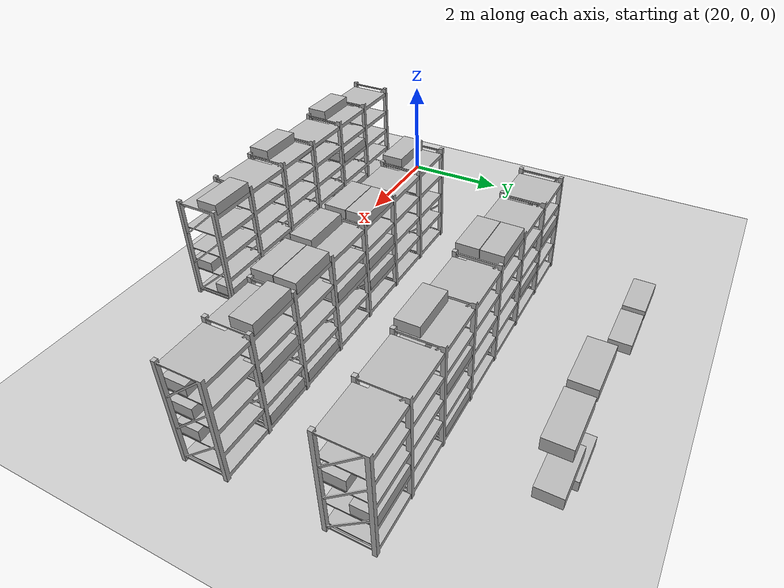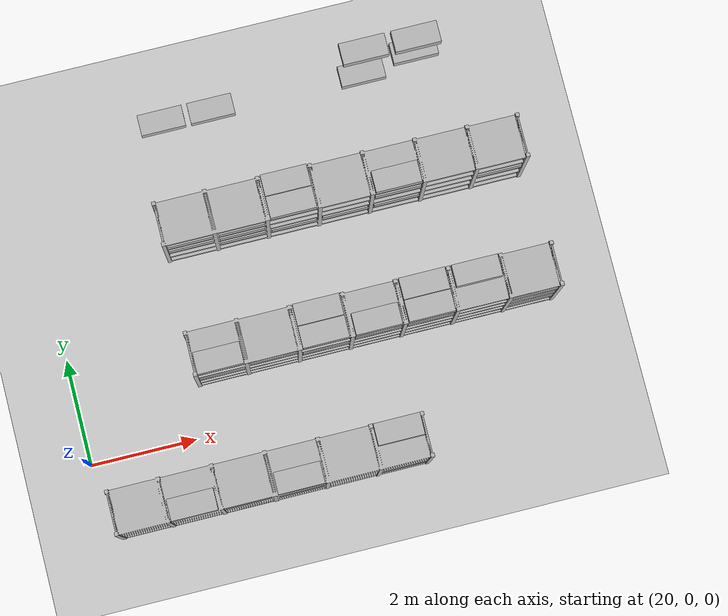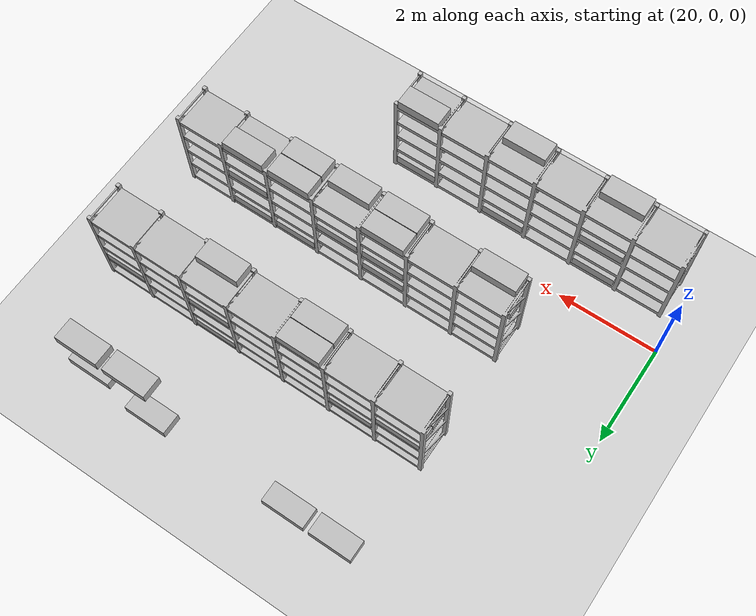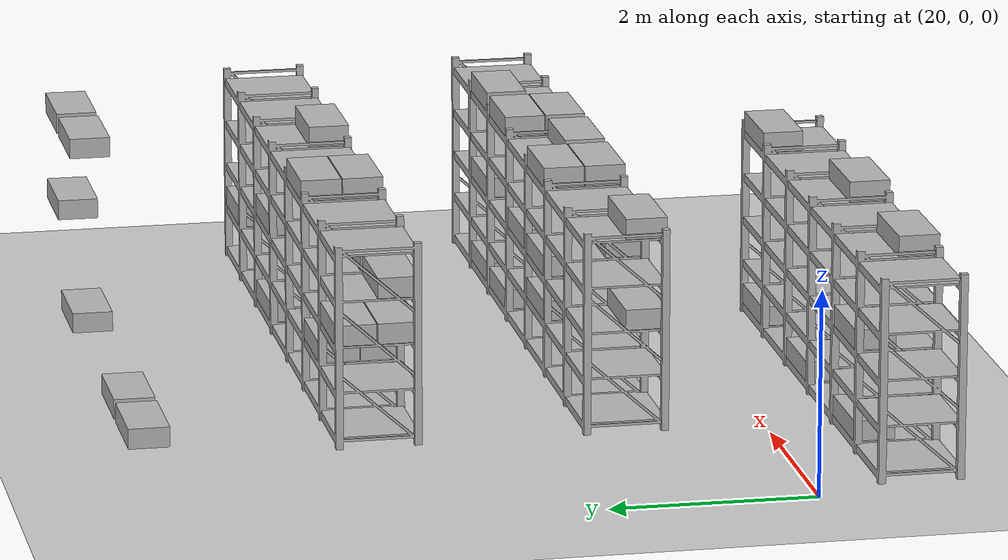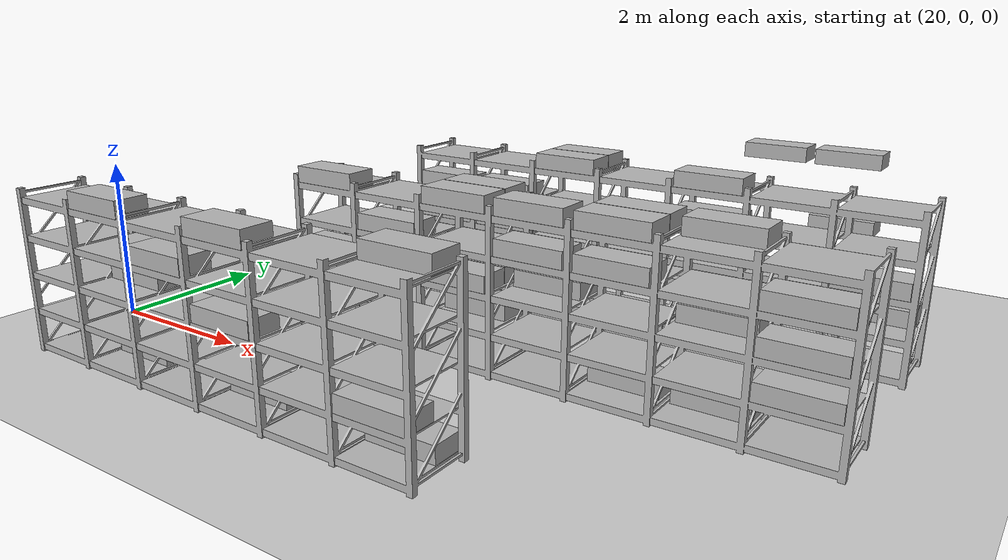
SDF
<sdf version="1.6">
 <world name="default">
  <model name="ground_plane">
   <static>1</static>
   <link name="link">
    <collision name="collision">
     <geometry><plane><normal>0 0 1</normal><size>100 100</size></plane></geometry>
     <surface><friction><ode><mu>100</mu><mu2>50</mu2></ode></friction></surface>
    </collision>
    <visual name="visual">
     <cast_shadows>0</cast_shadows>
     <geometry><plane><normal>0 0 1</normal><size>100 100</size></plane></geometry>
     <material>
      <script><uri>file://media/materials/scripts/gazebo.material</uri><name>Gazebo/Grey</name></script>
     </material>
    </visual>
   </link>
  </model>
  <include>
   <name>rack_B1_0</name>
   <uri>model://warehouse_rack_5lvl_6bay</uri>
   <pose>23.162 -1.0477 0 0 0 1.5708</pose>
  </include>
  <model name="box_B_001">
   <pose>25.562 -0.84271 0.202 0 0 1.5708</pose>
   <link name="link">
    <inertial>
     <mass>4.0</mass>
     <inertia><ixx>0.25417</ixx><iyy>0.06667</iyy><izz>0.29417</izz><ixy>0</ixy><ixz>0</ixz><iyz>0</iyz></inertia>
    </inertial>
    <collision name="collision">
     <geometry><box><size>0.4 0.85 0.2</size></box></geometry>
     <surface><friction><ode><mu>1.0</mu><mu2>1.0</mu2></ode></friction></surface>
    </collision>
    <visual name="visual">
     <cast_shadows>0</cast_shadows>
     <geometry><box><size>0.4 0.85 0.2</size></box></geometry>
     <material>
      <script>
       <uri>model://labeled_boxes/materials/scripts</uri>
       <uri>model://labeled_boxes/materials/textures</uri>
       <name>LabeledBox/B-001</name>
      </script>
     </material>
    </visual>
   </link>
  </model>
  <model name="box_B_002">
   <pose>25.562 -1.2527 0.652 0 0 1.5708</pose>
   <link name="link">
    <inertial>
     <mass>4.0</mass>
     <inertia><ixx>0.25417</ixx><iyy>0.06667</iyy><izz>0.29417</izz><ixy>0</ixy><ixz>0</ixz><iyz>0</iyz></inertia>
    </inertial>
    <collision name="collision">
     <geometry><box><size>0.4 0.85 0.2</size></box></geometry>
     <surface><friction><ode><mu>1.0</mu><mu2>1.0</mu2></ode></friction></surface>
    </collision>
    <visual name="visual">
     <cast_shadows>0</cast_shadows>
     <geometry><box><size>0.4 0.85 0.2</size></box></geometry>
     <material>
      <script>
       <uri>model://labeled_boxes/materials/scripts</uri>
       <uri>model://labeled_boxes/materials/textures</uri>
       <name>LabeledBox/B-002</name>
      </script>
     </material>
    </visual>
   </link>
  </model>
  <model name="box_B_003">
   <pose>25.562 -0.84271 2.002 0 0 1.5708</pose>
   <link name="link">
    <inertial>
     <mass>4.0</mass>
     <inertia><ixx>0.25417</ixx><iyy>0.06667</iyy><izz>0.29417</izz><ixy>0</ixy><ixz>0</ixz><iyz>0</iyz></inertia>
    </inertial>
    <collision name="collision">
     <geometry><box><size>0.4 0.85 0.2</size></box></geometry>
     <surface><friction><ode><mu>1.0</mu><mu2>1.0</mu2></ode></friction></surface>
    </collision>
    <visual name="visual">
     <cast_shadows>0</cast_shadows>
     <geometry><box><size>0.4 0.85 0.2</size></box></geometry>
     <material>
      <script>
       <uri>model://labeled_boxes/materials/scripts</uri>
       <uri>model://labeled_boxes/materials/textures</uri>
       <name>LabeledBox/B-003</name>
      </script>
     </material>
    </visual>
   </link>
  </model>
  <model name="box_B_004">
   <pose>23.646 -0.84271 0.202 0 0 1.5708</pose>
   <link name="link">
    <inertial>
     <mass>4.0</mass>
     <inertia><ixx>0.25417</ixx><iyy>0.06667</iyy><izz>0.29417</izz><ixy>0</ixy><ixz>0</ixz><iyz>0</iyz></inertia>
    </inertial>
    <collision name="collision">
     <geometry><box><size>0.4 0.85 0.2</size></box></geometry>
     <surface><friction><ode><mu>1.0</mu><mu2>1.0</mu2></ode></friction></surface>
    </collision>
    <visual name="visual">
     <cast_shadows>0</cast_shadows>
     <geometry><box><size>0.4 0.85 0.2</size></box></geometry>
     <material>
      <script>
       <uri>model://labeled_boxes/materials/scripts</uri>
       <uri>model://labeled_boxes/materials/textures</uri>
       <name>LabeledBox/B-004</name>
      </script>
     </material>
    </visual>
   </link>
  </model>
  <model name="box_B_005">
   <pose>23.646 -1.2527 1.102 0 0 1.5708</pose>
   <link name="link">
    <inertial>
     <mass>4.0</mass>
     <inertia><ixx>0.25417</ixx><iyy>0.06667</iyy><izz>0.29417</izz><ixy>0</ixy><ixz>0</ixz><iyz>0</iyz></inertia>
    </inertial>
    <collision name="collision">
     <geometry><box><size>0.4 0.85 0.2</size></box></geometry>
     <surface><friction><ode><mu>1.0</mu><mu2>1.0</mu2></ode></friction></surface>
    </collision>
    <visual name="visual">
     <cast_shadows>0</cast_shadows>
     <geometry><box><size>0.4 0.85 0.2</size></box></geometry>
     <material>
      <script>
       <uri>model://labeled_boxes/materials/scripts</uri>
       <uri>model://labeled_boxes/materials/textures</uri>
       <name>LabeledBox/B-005</name>
      </script>
     </material>
    </visual>
   </link>
  </model>
  <model name="box_B_006">
   <pose>23.646 -1.2527 2.002 0 0 1.5708</pose>
   <link name="link">
    <inertial>
     <mass>4.0</mass>
     <inertia><ixx>0.25417</ixx><iyy>0.06667</iyy><izz>0.29417</izz><ixy>0</ixy><ixz>0</ixz><iyz>0</iyz></inertia>
    </inertial>
    <collision name="collision">
     <geometry><box><size>0.4 0.85 0.2</size></box></geometry>
     <surface><friction><ode><mu>1.0</mu><mu2>1.0</mu2></ode></friction></surface>
    </collision>
    <visual name="visual">
     <cast_shadows>0</cast_shadows>
     <geometry><box><size>0.4 0.85 0.2</size></box></geometry>
     <material>
      <script>
       <uri>model://labeled_boxes/materials/scripts</uri>
       <uri>model://labeled_boxes/materials/textures</uri>
       <name>LabeledBox/B-006</name>
      </script>
     </material>
    </visual>
   </link>
  </model>
  <model name="box_B_007">
   <pose>22.679 -1.2527 1.552 0 0 1.5708</pose>
   <link name="link">
    <inertial>
     <mass>4.0</mass>
     <inertia><ixx>0.25417</ixx><iyy>0.06667</iyy><izz>0.29417</izz><ixy>0</ixy><ixz>0</ixz><iyz>0</iyz></inertia>
    </inertial>
    <collision name="collision">
     <geometry><box><size>0.4 0.85 0.2</size></box></geometry>
     <surface><friction><ode><mu>1.0</mu><mu2>1.0</mu2></ode></friction></surface>
    </collision>
    <visual name="visual">
     <cast_shadows>0</cast_shadows>
     <geometry><box><size>0.4 0.85 0.2</size></box></geometry>
     <material>
      <script>
       <uri>model://labeled_boxes/materials/scripts</uri>
       <uri>model://labeled_boxes/materials/textures</uri>
       <name>LabeledBox/B-007</name>
      </script>
     </material>
    </visual>
   </link>
  </model>
  <model name="box_B_008">
   <pose>21.712 -0.84271 0.202 0 0 1.5708</pose>
   <link name="link">
    <inertial>
     <mass>4.0</mass>
     <inertia><ixx>0.25417</ixx><iyy>0.06667</iyy><izz>0.29417</izz><ixy>0</ixy><ixz>0</ixz><iyz>0</iyz></inertia>
    </inertial>
    <collision name="collision">
     <geometry><box><size>0.4 0.85 0.2</size></box></geometry>
     <surface><friction><ode><mu>1.0</mu><mu2>1.0</mu2></ode></friction></surface>
    </collision>
    <visual name="visual">
     <cast_shadows>0</cast_shadows>
     <geometry><box><size>0.4 0.85 0.2</size></box></geometry>
     <material>
      <script>
       <uri>model://labeled_boxes/materials/scripts</uri>
       <uri>model://labeled_boxes/materials/textures</uri>
       <name>LabeledBox/B-008</name>
      </script>
     </material>
    </visual>
   </link>
  </model>
  <model name="box_B_010">
   <pose>21.712 -0.84271 1.102 0 0 1.5708</pose>
   <link name="link">
    <inertial>
     <mass>4.0</mass>
     <inertia><ixx>0.25417</ixx><iyy>0.06667</iyy><izz>0.29417</izz><ixy>0</ixy><ixz>0</ixz><iyz>0</iyz></inertia>
    </inertial>
    <collision name="collision">
     <geometry><box><size>0.4 0.85 0.2</size></box></geometry>
     <surface><friction><ode><mu>1.0</mu><mu2>1.0</mu2></ode></friction></surface>
    </collision>
    <visual name="visual">
     <cast_shadows>0</cast_shadows>
     <geometry><box><size>0.4 0.85 0.2</size></box></geometry>
     <material>
      <script>
       <uri>model://labeled_boxes/materials/scripts</uri>
       <uri>model://labeled_boxes/materials/textures</uri>
       <name>LabeledBox/B-010</name>
      </script>
     </material>
    </visual>
   </link>
  </model>
  <model name="box_B_012">
   <pose>21.712 -1.2527 2.002 0 0 1.5708</pose>
   <link name="link">
    <inertial>
     <mass>4.0</mass>
     <inertia><ixx>0.25417</ixx><iyy>0.06667</iyy><izz>0.29417</izz><ixy>0</ixy><ixz>0</ixz><iyz>0</iyz></inertia>
    </inertial>
    <collision name="collision">
     <geometry><box><size>0.4 0.85 0.2</size></box></geometry>
     <surface><friction><ode><mu>1.0</mu><mu2>1.0</mu2></ode></friction></surface>
    </collision>
    <visual name="visual">
     <cast_shadows>0</cast_shadows>
     <geometry><box><size>0.4 0.85 0.2</size></box></geometry>
     <material>
      <script>
       <uri>model://labeled_boxes/materials/scripts</uri>
       <uri>model://labeled_boxes/materials/textures</uri>
       <name>LabeledBox/B-012</name>
      </script>
     </material>
    </visual>
   </link>
  </model>
  <include>
   <name>rack_B2_0</name>
   <uri>model://warehouse_rack_5lvl_7bay</uri>
   <pose>25.662 1.3523 0 0 0 1.5708</pose>
  </include>
  <model name="box_B_015">
   <pose>28.559 1.1473 0.652 0 0 1.5708</pose>
   <link name="link">
    <inertial>
     <mass>4.0</mass>
     <inertia><ixx>0.25417</ixx><iyy>0.06667</iyy><izz>0.29417</izz><ixy>0</ixy><ixz>0</ixz><iyz>0</iyz></inertia>
    </inertial>
    <collision name="collision">
     <geometry><box><size>0.4 0.85 0.2</size></box></geometry>
     <surface><friction><ode><mu>1.0</mu><mu2>1.0</mu2></ode></friction></surface>
    </collision>
    <visual name="visual">
     <cast_shadows>0</cast_shadows>
     <geometry><box><size>0.4 0.85 0.2</size></box></geometry>
     <material>
      <script>
       <uri>model://labeled_boxes/materials/scripts</uri>
       <uri>model://labeled_boxes/materials/textures</uri>
       <name>LabeledBox/B-015</name>
      </script>
     </material>
    </visual>
   </link>
  </model>
  <model name="box_B_016">
   <pose>28.559 1.1473 1.102 0 0 1.5708</pose>
   <link name="link">
    <inertial>
     <mass>4.0</mass>
     <inertia><ixx>0.25417</ixx><iyy>0.06667</iyy><izz>0.29417</izz><ixy>0</ixy><ixz>0</ixz><iyz>0</iyz></inertia>
    </inertial>
    <collision name="collision">
     <geometry><box><size>0.4 0.85 0.2</size></box></geometry>
     <surface><friction><ode><mu>1.0</mu><mu2>1.0</mu2></ode></friction></surface>
    </collision>
    <visual name="visual">
     <cast_shadows>0</cast_shadows>
     <geometry><box><size>0.4 0.85 0.2</size></box></geometry>
     <material>
      <script>
       <uri>model://labeled_boxes/materials/scripts</uri>
       <uri>model://labeled_boxes/materials/textures</uri>
       <name>LabeledBox/B-016</name>
      </script>
     </material>
    </visual>
   </link>
  </model>
  <model name="box_B_017">
   <pose>28.559 1.1473 1.552 0 0 1.5708</pose>
   <link name="link">
    <inertial>
     <mass>4.0</mass>
     <inertia><ixx>0.25417</ixx><iyy>0.06667</iyy><izz>0.29417</izz><ixy>0</ixy><ixz>0</ixz><iyz>0</iyz></inertia>
    </inertial>
    <collision name="collision">
     <geometry><box><size>0.4 0.85 0.2</size></box></geometry>
     <surface><friction><ode><mu>1.0</mu><mu2>1.0</mu2></ode></friction></surface>
    </collision>
    <visual name="visual">
     <cast_shadows>0</cast_shadows>
     <geometry><box><size>0.4 0.85 0.2</size></box></geometry>
     <material>
      <script>
       <uri>model://labeled_boxes/materials/scripts</uri>
       <uri>model://labeled_boxes/materials/textures</uri>
       <name>LabeledBox/B-017</name>
      </script>
     </material>
    </visual>
   </link>
  </model>
  <model name="box_B_018">
   <pose>27.605 1.5573 0.202 0 0 1.5708</pose>
   <link name="link">
    <inertial>
     <mass>4.0</mass>
     <inertia><ixx>0.25417</ixx><iyy>0.06667</iyy><izz>0.29417</izz><ixy>0</ixy><ixz>0</ixz><iyz>0</iyz></inertia>
    </inertial>
    <collision name="collision">
     <geometry><box><size>0.4 0.85 0.2</size></box></geometry>
     <surface><friction><ode><mu>1.0</mu><mu2>1.0</mu2></ode></friction></surface>
    </collision>
    <visual name="visual">
     <cast_shadows>0</cast_shadows>
     <geometry><box><size>0.4 0.85 0.2</size></box></geometry>
     <material>
      <script>
       <uri>model://labeled_boxes/materials/scripts</uri>
       <uri>model://labeled_boxes/materials/textures</uri>
       <name>LabeledBox/B-018</name>
      </script>
     </material>
    </visual>
   </link>
  </model>
  <model name="box_B_019">
   <pose>27.605 1.5573 1.102 0 0 1.5708</pose>
   <link name="link">
    <inertial>
     <mass>4.0</mass>
     <inertia><ixx>0.25417</ixx><iyy>0.06667</iyy><izz>0.29417</izz><ixy>0</ixy><ixz>0</ixz><iyz>0</iyz></inertia>
    </inertial>
    <collision name="collision">
     <geometry><box><size>0.4 0.85 0.2</size></box></geometry>
     <surface><friction><ode><mu>1.0</mu><mu2>1.0</mu2></ode></friction></surface>
    </collision>
    <visual name="visual">
     <cast_shadows>0</cast_shadows>
     <geometry><box><size>0.4 0.85 0.2</size></box></geometry>
     <material>
      <script>
       <uri>model://labeled_boxes/materials/scripts</uri>
       <uri>model://labeled_boxes/materials/textures</uri>
       <name>LabeledBox/B-019</name>
      </script>
     </material>
    </visual>
   </link>
  </model>
  <model name="box_B_020">
   <pose>27.605 1.5573 2.002 0 0 1.5708</pose>
   <link name="link">
    <inertial>
     <mass>4.0</mass>
     <inertia><ixx>0.25417</ixx><iyy>0.06667</iyy><izz>0.29417</izz><ixy>0</ixy><ixz>0</ixz><iyz>0</iyz></inertia>
    </inertial>
    <collision name="collision">
     <geometry><box><size>0.4 0.85 0.2</size></box></geometry>
     <surface><friction><ode><mu>1.0</mu><mu2>1.0</mu2></ode></friction></surface>
    </collision>
    <visual name="visual">
     <cast_shadows>0</cast_shadows>
     <geometry><box><size>0.4 0.85 0.2</size></box></geometry>
     <material>
      <script>
       <uri>model://labeled_boxes/materials/scripts</uri>
       <uri>model://labeled_boxes/materials/textures</uri>
       <name>LabeledBox/B-020</name>
      </script>
     </material>
    </visual>
   </link>
  </model>
  <model name="box_B_021">
   <pose>26.634 1.5573 0.202 0 0 1.5708</pose>
   <link name="link">
    <inertial>
     <mass>4.0</mass>
     <inertia><ixx>0.25417</ixx><iyy>0.06667</iyy><izz>0.29417</izz><ixy>0</ixy><ixz>0</ixz><iyz>0</iyz></inertia>
    </inertial>
    <collision name="collision">
     <geometry><box><size>0.4 0.85 0.2</size></box></geometry>
     <surface><friction><ode><mu>1.0</mu><mu2>1.0</mu2></ode></friction></surface>
    </collision>
    <visual name="visual">
     <cast_shadows>0</cast_shadows>
     <geometry><box><size>0.4 0.85 0.2</size></box></geometry>
     <material>
      <script>
       <uri>model://labeled_boxes/materials/scripts</uri>
       <uri>model://labeled_boxes/materials/textures</uri>
       <name>LabeledBox/B-021</name>
      </script>
     </material>
    </visual>
   </link>
  </model>
  <model name="box_B_022">
   <pose>26.634 1.1473 1.552 0 0 1.5708</pose>
   <link name="link">
    <inertial>
     <mass>4.0</mass>
     <inertia><ixx>0.25417</ixx><iyy>0.06667</iyy><izz>0.29417</izz><ixy>0</ixy><ixz>0</ixz><iyz>0</iyz></inertia>
    </inertial>
    <collision name="collision">
     <geometry><box><size>0.4 0.85 0.2</size></box></geometry>
     <surface><friction><ode><mu>1.0</mu><mu2>1.0</mu2></ode></friction></surface>
    </collision>
    <visual name="visual">
     <cast_shadows>0</cast_shadows>
     <geometry><box><size>0.4 0.85 0.2</size></box></geometry>
     <material>
      <script>
       <uri>model://labeled_boxes/materials/scripts</uri>
       <uri>model://labeled_boxes/materials/textures</uri>
       <name>LabeledBox/B-022</name>
      </script>
     </material>
    </visual>
   </link>
  </model>
  <model name="box_B_023">
   <pose>26.634 1.1473 2.002 0 0 1.5708</pose>
   <link name="link">
    <inertial>
     <mass>4.0</mass>
     <inertia><ixx>0.25417</ixx><iyy>0.06667</iyy><izz>0.29417</izz><ixy>0</ixy><ixz>0</ixz><iyz>0</iyz></inertia>
    </inertial>
    <collision name="collision">
     <geometry><box><size>0.4 0.85 0.2</size></box></geometry>
     <surface><friction><ode><mu>1.0</mu><mu2>1.0</mu2></ode></friction></surface>
    </collision>
    <visual name="visual">
     <cast_shadows>0</cast_shadows>
     <geometry><box><size>0.4 0.85 0.2</size></box></geometry>
     <material>
      <script>
       <uri>model://labeled_boxes/materials/scripts</uri>
       <uri>model://labeled_boxes/materials/textures</uri>
       <name>LabeledBox/B-023</name>
      </script>
     </material>
    </visual>
   </link>
  </model>
  <model name="box_B_024">
   <pose>26.634 1.5573 2.002 0 0 1.5708</pose>
   <link name="link">
    <inertial>
     <mass>4.0</mass>
     <inertia><ixx>0.25417</ixx><iyy>0.06667</iyy><izz>0.29417</izz><ixy>0</ixy><ixz>0</ixz><iyz>0</iyz></inertia>
    </inertial>
    <collision name="collision">
     <geometry><box><size>0.4 0.85 0.2</size></box></geometry>
     <surface><friction><ode><mu>1.0</mu><mu2>1.0</mu2></ode></friction></surface>
    </collision>
    <visual name="visual">
     <cast_shadows>0</cast_shadows>
     <geometry><box><size>0.4 0.85 0.2</size></box></geometry>
     <material>
      <script>
       <uri>model://labeled_boxes/materials/scripts</uri>
       <uri>model://labeled_boxes/materials/textures</uri>
       <name>LabeledBox/B-024</name>
      </script>
     </material>
    </visual>
   </link>
  </model>
  <model name="box_B_025">
   <pose>25.662 1.5573 1.102 0 0 1.5708</pose>
   <link name="link">
    <inertial>
     <mass>4.0</mass>
     <inertia><ixx>0.25417</ixx><iyy>0.06667</iyy><izz>0.29417</izz><ixy>0</ixy><ixz>0</ixz><iyz>0</iyz></inertia>
    </inertial>
    <collision name="collision">
     <geometry><box><size>0.4 0.85 0.2</size></box></geometry>
     <surface><friction><ode><mu>1.0</mu><mu2>1.0</mu2></ode></friction></surface>
    </collision>
    <visual name="visual">
     <cast_shadows>0</cast_shadows>
     <geometry><box><size>0.4 0.85 0.2</size></box></geometry>
     <material>
      <script>
       <uri>model://labeled_boxes/materials/scripts</uri>
       <uri>model://labeled_boxes/materials/textures</uri>
       <name>LabeledBox/B-025</name>
      </script>
     </material>
    </visual>
   </link>
  </model>
  <model name="box_B_026">
   <pose>25.662 1.1473 1.552 0 0 1.5708</pose>
   <link name="link">
    <inertial>
     <mass>4.0</mass>
     <inertia><ixx>0.25417</ixx><iyy>0.06667</iyy><izz>0.29417</izz><ixy>0</ixy><ixz>0</ixz><iyz>0</iyz></inertia>
    </inertial>
    <collision name="collision">
     <geometry><box><size>0.4 0.85 0.2</size></box></geometry>
     <surface><friction><ode><mu>1.0</mu><mu2>1.0</mu2></ode></friction></surface>
    </collision>
    <visual name="visual">
     <cast_shadows>0</cast_shadows>
     <geometry><box><size>0.4 0.85 0.2</size></box></geometry>
     <material>
      <script>
       <uri>model://labeled_boxes/materials/scripts</uri>
       <uri>model://labeled_boxes/materials/textures</uri>
       <name>LabeledBox/B-026</name>
      </script>
     </material>
    </visual>
   </link>
  </model>
  <model name="box_B_027">
   <pose>25.662 1.1473 2.002 0 0 1.5708</pose>
   <link name="link">
    <inertial>
     <mass>4.0</mass>
     <inertia><ixx>0.25417</ixx><iyy>0.06667</iyy><izz>0.29417</izz><ixy>0</ixy><ixz>0</ixz><iyz>0</iyz></inertia>
    </inertial>
    <collision name="collision">
     <geometry><box><size>0.4 0.85 0.2</size></box></geometry>
     <surface><friction><ode><mu>1.0</mu><mu2>1.0</mu2></ode></friction></surface>
    </collision>
    <visual name="visual">
     <cast_shadows>0</cast_shadows>
     <geometry><box><size>0.4 0.85 0.2</size></box></geometry>
     <material>
      <script>
       <uri>model://labeled_boxes/materials/scripts</uri>
       <uri>model://labeled_boxes/materials/textures</uri>
       <name>LabeledBox/B-027</name>
      </script>
     </material>
    </visual>
   </link>
  </model>
  <model name="box_B_028">
   <pose>24.691 1.5573 0.652 0 0 1.5708</pose>
   <link name="link">
    <inertial>
     <mass>4.0</mass>
     <inertia><ixx>0.25417</ixx><iyy>0.06667</iyy><izz>0.29417</izz><ixy>0</ixy><ixz>0</ixz><iyz>0</iyz></inertia>
    </inertial>
    <collision name="collision">
     <geometry><box><size>0.4 0.85 0.2</size></box></geometry>
     <surface><friction><ode><mu>1.0</mu><mu2>1.0</mu2></ode></friction></surface>
    </collision>
    <visual name="visual">
     <cast_shadows>0</cast_shadows>
     <geometry><box><size>0.4 0.85 0.2</size></box></geometry>
     <material>
      <script>
       <uri>model://labeled_boxes/materials/scripts</uri>
       <uri>model://labeled_boxes/materials/textures</uri>
       <name>LabeledBox/B-028</name>
      </script>
     </material>
    </visual>
   </link>
  </model>
  <model name="box_B_029">
   <pose>24.691 1.1473 1.102 0 0 1.5708</pose>
   <link name="link">
    <inertial>
     <mass>4.0</mass>
     <inertia><ixx>0.25417</ixx><iyy>0.06667</iyy><izz>0.29417</izz><ixy>0</ixy><ixz>0</ixz><iyz>0</iyz></inertia>
    </inertial>
    <collision name="collision">
     <geometry><box><size>0.4 0.85 0.2</size></box></geometry>
     <surface><friction><ode><mu>1.0</mu><mu2>1.0</mu2></ode></friction></surface>
    </collision>
    <visual name="visual">
     <cast_shadows>0</cast_shadows>
     <geometry><box><size>0.4 0.85 0.2</size></box></geometry>
     <material>
      <script>
       <uri>model://labeled_boxes/materials/scripts</uri>
       <uri>model://labeled_boxes/materials/textures</uri>
       <name>LabeledBox/B-029</name>
      </script>
     </material>
    </visual>
   </link>
  </model>
  <model name="box_B_030">
   <pose>24.691 1.5573 1.102 0 0 1.5708</pose>
   <link name="link">
    <inertial>
     <mass>4.0</mass>
     <inertia><ixx>0.25417</ixx><iyy>0.06667</iyy><izz>0.29417</izz><ixy>0</ixy><ixz>0</ixz><iyz>0</iyz></inertia>
    </inertial>
    <collision name="collision">
     <geometry><box><size>0.4 0.85 0.2</size></box></geometry>
     <surface><friction><ode><mu>1.0</mu><mu2>1.0</mu2></ode></friction></surface>
    </collision>
    <visual name="visual">
     <cast_shadows>0</cast_shadows>
     <geometry><box><size>0.4 0.85 0.2</size></box></geometry>
     <material>
      <script>
       <uri>model://labeled_boxes/materials/scripts</uri>
       <uri>model://labeled_boxes/materials/textures</uri>
       <name>LabeledBox/B-030</name>
      </script>
     </material>
    </visual>
   </link>
  </model>
  <model name="box_B_031">
   <pose>24.691 1.1473 2.002 0 0 1.5708</pose>
   <link name="link">
    <inertial>
     <mass>4.0</mass>
     <inertia><ixx>0.25417</ixx><iyy>0.06667</iyy><izz>0.29417</izz><ixy>0</ixy><ixz>0</ixz><iyz>0</iyz></inertia>
    </inertial>
    <collision name="collision">
     <geometry><box><size>0.4 0.85 0.2</size></box></geometry>
     <surface><friction><ode><mu>1.0</mu><mu2>1.0</mu2></ode></friction></surface>
    </collision>
    <visual name="visual">
     <cast_shadows>0</cast_shadows>
     <geometry><box><size>0.4 0.85 0.2</size></box></geometry>
     <material>
      <script>
       <uri>model://labeled_boxes/materials/scripts</uri>
       <uri>model://labeled_boxes/materials/textures</uri>
       <name>LabeledBox/B-031</name>
      </script>
     </material>
    </visual>
   </link>
  </model>
  <model name="box_B_032">
   <pose>24.691 1.5573 2.002 0 0 1.5708</pose>
   <link name="link">
    <inertial>
     <mass>4.0</mass>
     <inertia><ixx>0.25417</ixx><iyy>0.06667</iyy><izz>0.29417</izz><ixy>0</ixy><ixz>0</ixz><iyz>0</iyz></inertia>
    </inertial>
    <collision name="collision">
     <geometry><box><size>0.4 0.85 0.2</size></box></geometry>
     <surface><friction><ode><mu>1.0</mu><mu2>1.0</mu2></ode></friction></surface>
    </collision>
    <visual name="visual">
     <cast_shadows>0</cast_shadows>
     <geometry><box><size>0.4 0.85 0.2</size></box></geometry>
     <material>
      <script>
       <uri>model://labeled_boxes/materials/scripts</uri>
       <uri>model://labeled_boxes/materials/textures</uri>
       <name>LabeledBox/B-032</name>
      </script>
     </material>
    </visual>
   </link>
  </model>
  <model name="box_B_033">
   <pose>23.72 1.1473 1.552 0 0 1.5708</pose>
   <link name="link">
    <inertial>
     <mass>4.0</mass>
     <inertia><ixx>0.25417</ixx><iyy>0.06667</iyy><izz>0.29417</izz><ixy>0</ixy><ixz>0</ixz><iyz>0</iyz></inertia>
    </inertial>
    <collision name="collision">
     <geometry><box><size>0.4 0.85 0.2</size></box></geometry>
     <surface><friction><ode><mu>1.0</mu><mu2>1.0</mu2></ode></friction></surface>
    </collision>
    <visual name="visual">
     <cast_shadows>0</cast_shadows>
     <geometry><box><size>0.4 0.85 0.2</size></box></geometry>
     <material>
      <script>
       <uri>model://labeled_boxes/materials/scripts</uri>
       <uri>model://labeled_boxes/materials/textures</uri>
       <name>LabeledBox/B-033</name>
      </script>
     </material>
    </visual>
   </link>
  </model>
  <model name="box_B_034">
   <pose>22.766 1.1473 1.102 0 0 1.5708</pose>
   <link name="link">
    <inertial>
     <mass>4.0</mass>
     <inertia><ixx>0.25417</ixx><iyy>0.06667</iyy><izz>0.29417</izz><ixy>0</ixy><ixz>0</ixz><iyz>0</iyz></inertia>
    </inertial>
    <collision name="collision">
     <geometry><box><size>0.4 0.85 0.2</size></box></geometry>
     <surface><friction><ode><mu>1.0</mu><mu2>1.0</mu2></ode></friction></surface>
    </collision>
    <visual name="visual">
     <cast_shadows>0</cast_shadows>
     <geometry><box><size>0.4 0.85 0.2</size></box></geometry>
     <material>
      <script>
       <uri>model://labeled_boxes/materials/scripts</uri>
       <uri>model://labeled_boxes/materials/textures</uri>
       <name>LabeledBox/B-034</name>
      </script>
     </material>
    </visual>
   </link>
  </model>
  <model name="box_B_035">
   <pose>22.766 1.1473 2.002 0 0 1.5708</pose>
   <link name="link">
    <inertial>
     <mass>4.0</mass>
     <inertia><ixx>0.25417</ixx><iyy>0.06667</iyy><izz>0.29417</izz><ixy>0</ixy><ixz>0</ixz><iyz>0</iyz></inertia>
    </inertial>
    <collision name="collision">
     <geometry><box><size>0.4 0.85 0.2</size></box></geometry>
     <surface><friction><ode><mu>1.0</mu><mu2>1.0</mu2></ode></friction></surface>
    </collision>
    <visual name="visual">
     <cast_shadows>0</cast_shadows>
     <geometry><box><size>0.4 0.85 0.2</size></box></geometry>
     <material>
      <script>
       <uri>model://labeled_boxes/materials/scripts</uri>
       <uri>model://labeled_boxes/materials/textures</uri>
       <name>LabeledBox/B-035</name>
      </script>
     </material>
    </visual>
   </link>
  </model>
  <include>
   <name>rack_B3_0</name>
   <uri>model://warehouse_rack_5lvl_7bay</uri>
   <pose>25.662 3.7523 0 0 0 1.5708</pose>
  </include>
  <model name="box_B_050">
   <pose>28.559 3.9573 0.652 0 0 1.5708</pose>
   <link name="link">
    <inertial>
     <mass>4.0</mass>
     <inertia><ixx>0.25417</ixx><iyy>0.06667</iyy><izz>0.29417</izz><ixy>0</ixy><ixz>0</ixz><iyz>0</iyz></inertia>
    </inertial>
    <collision name="collision">
     <geometry><box><size>0.4 0.85 0.2</size></box></geometry>
     <surface><friction><ode><mu>1.0</mu><mu2>1.0</mu2></ode></friction></surface>
    </collision>
    <visual name="visual">
     <cast_shadows>0</cast_shadows>
     <geometry><box><size>0.4 0.85 0.2</size></box></geometry>
     <material>
      <script>
       <uri>model://labeled_boxes/materials/scripts</uri>
       <uri>model://labeled_boxes/materials/textures</uri>
       <name>LabeledBox/B-050</name>
      </script>
     </material>
    </visual>
   </link>
  </model>
  <model name="box_B_051">
   <pose>28.559 3.5473 1.102 0 0 1.5708</pose>
   <link name="link">
    <inertial>
     <mass>4.0</mass>
     <inertia><ixx>0.25417</ixx><iyy>0.06667</iyy><izz>0.29417</izz><ixy>0</ixy><ixz>0</ixz><iyz>0</iyz></inertia>
    </inertial>
    <collision name="collision">
     <geometry><box><size>0.4 0.85 0.2</size></box></geometry>
     <surface><friction><ode><mu>1.0</mu><mu2>1.0</mu2></ode></friction></surface>
    </collision>
    <visual name="visual">
     <cast_shadows>0</cast_shadows>
     <geometry><box><size>0.4 0.85 0.2</size></box></geometry>
     <material>
      <script>
       <uri>model://labeled_boxes/materials/scripts</uri>
       <uri>model://labeled_boxes/materials/textures</uri>
       <name>LabeledBox/B-051</name>
      </script>
     </material>
    </visual>
   </link>
  </model>
  <model name="box_B_052">
   <pose>26.634 3.9573 0.202 0 0 1.5708</pose>
   <link name="link">
    <inertial>
     <mass>4.0</mass>
     <inertia><ixx>0.25417</ixx><iyy>0.06667</iyy><izz>0.29417</izz><ixy>0</ixy><ixz>0</ixz><iyz>0</iyz></inertia>
    </inertial>
    <collision name="collision">
     <geometry><box><size>0.4 0.85 0.2</size></box></geometry>
     <surface><friction><ode><mu>1.0</mu><mu2>1.0</mu2></ode></friction></surface>
    </collision>
    <visual name="visual">
     <cast_shadows>0</cast_shadows>
     <geometry><box><size>0.4 0.85 0.2</size></box></geometry>
     <material>
      <script>
       <uri>model://labeled_boxes/materials/scripts</uri>
       <uri>model://labeled_boxes/materials/textures</uri>
       <name>LabeledBox/B-052</name>
      </script>
     </material>
    </visual>
   </link>
  </model>
  <model name="box_B_053">
   <pose>26.634 3.5473 0.652 0 0 1.5708</pose>
   <link name="link">
    <inertial>
     <mass>4.0</mass>
     <inertia><ixx>0.25417</ixx><iyy>0.06667</iyy><izz>0.29417</izz><ixy>0</ixy><ixz>0</ixz><iyz>0</iyz></inertia>
    </inertial>
    <collision name="collision">
     <geometry><box><size>0.4 0.85 0.2</size></box></geometry>
     <surface><friction><ode><mu>1.0</mu><mu2>1.0</mu2></ode></friction></surface>
    </collision>
    <visual name="visual">
     <cast_shadows>0</cast_shadows>
     <geometry><box><size>0.4 0.85 0.2</size></box></geometry>
     <material>
      <script>
       <uri>model://labeled_boxes/materials/scripts</uri>
       <uri>model://labeled_boxes/materials/textures</uri>
       <name>LabeledBox/B-053</name>
      </script>
     </material>
    </visual>
   </link>
  </model>
  <model name="box_B_054">
   <pose>26.634 3.9573 1.102 0 0 1.5708</pose>
   <link name="link">
    <inertial>
     <mass>4.0</mass>
     <inertia><ixx>0.25417</ixx><iyy>0.06667</iyy><izz>0.29417</izz><ixy>0</ixy><ixz>0</ixz><iyz>0</iyz></inertia>
    </inertial>
    <collision name="collision">
     <geometry><box><size>0.4 0.85 0.2</size></box></geometry>
     <surface><friction><ode><mu>1.0</mu><mu2>1.0</mu2></ode></friction></surface>
    </collision>
    <visual name="visual">
     <cast_shadows>0</cast_shadows>
     <geometry><box><size>0.4 0.85 0.2</size></box></geometry>
     <material>
      <script>
       <uri>model://labeled_boxes/materials/scripts</uri>
       <uri>model://labeled_boxes/materials/textures</uri>
       <name>LabeledBox/B-054</name>
      </script>
     </material>
    </visual>
   </link>
  </model>
  <model name="box_B_055">
   <pose>26.634 3.5473 1.552 0 0 1.5708</pose>
   <link name="link">
    <inertial>
     <mass>4.0</mass>
     <inertia><ixx>0.25417</ixx><iyy>0.06667</iyy><izz>0.29417</izz><ixy>0</ixy><ixz>0</ixz><iyz>0</iyz></inertia>
    </inertial>
    <collision name="collision">
     <geometry><box><size>0.4 0.85 0.2</size></box></geometry>
     <surface><friction><ode><mu>1.0</mu><mu2>1.0</mu2></ode></friction></surface>
    </collision>
    <visual name="visual">
     <cast_shadows>0</cast_shadows>
     <geometry><box><size>0.4 0.85 0.2</size></box></geometry>
     <material>
      <script>
       <uri>model://labeled_boxes/materials/scripts</uri>
       <uri>model://labeled_boxes/materials/textures</uri>
       <name>LabeledBox/B-055</name>
      </script>
     </material>
    </visual>
   </link>
  </model>
  <model name="box_B_056">
   <pose>26.634 3.5473 2.002 0 0 1.5708</pose>
   <link name="link">
    <inertial>
     <mass>4.0</mass>
     <inertia><ixx>0.25417</ixx><iyy>0.06667</iyy><izz>0.29417</izz><ixy>0</ixy><ixz>0</ixz><iyz>0</iyz></inertia>
    </inertial>
    <collision name="collision">
     <geometry><box><size>0.4 0.85 0.2</size></box></geometry>
     <surface><friction><ode><mu>1.0</mu><mu2>1.0</mu2></ode></friction></surface>
    </collision>
    <visual name="visual">
     <cast_shadows>0</cast_shadows>
     <geometry><box><size>0.4 0.85 0.2</size></box></geometry>
     <material>
      <script>
       <uri>model://labeled_boxes/materials/scripts</uri>
       <uri>model://labeled_boxes/materials/textures</uri>
       <name>LabeledBox/B-056</name>
      </script>
     </material>
    </visual>
   </link>
  </model>
  <model name="box_B_057">
   <pose>25.662 3.5473 0.652 0 0 1.5708</pose>
   <link name="link">
    <inertial>
     <mass>4.0</mass>
     <inertia><ixx>0.25417</ixx><iyy>0.06667</iyy><izz>0.29417</izz><ixy>0</ixy><ixz>0</ixz><iyz>0</iyz></inertia>
    </inertial>
    <collision name="collision">
     <geometry><box><size>0.4 0.85 0.2</size></box></geometry>
     <surface><friction><ode><mu>1.0</mu><mu2>1.0</mu2></ode></friction></surface>
    </collision>
    <visual name="visual">
     <cast_shadows>0</cast_shadows>
     <geometry><box><size>0.4 0.85 0.2</size></box></geometry>
     <material>
      <script>
       <uri>model://labeled_boxes/materials/scripts</uri>
       <uri>model://labeled_boxes/materials/textures</uri>
       <name>LabeledBox/B-057</name>
      </script>
     </material>
    </visual>
   </link>
  </model>
  <model name="box_B_058">
   <pose>24.691 3.5473 0.652 0 0 1.5708</pose>
   <link name="link">
    <inertial>
     <mass>4.0</mass>
     <inertia><ixx>0.25417</ixx><iyy>0.06667</iyy><izz>0.29417</izz><ixy>0</ixy><ixz>0</ixz><iyz>0</iyz></inertia>
    </inertial>
    <collision name="collision">
     <geometry><box><size>0.4 0.85 0.2</size></box></geometry>
     <surface><friction><ode><mu>1.0</mu><mu2>1.0</mu2></ode></friction></surface>
    </collision>
    <visual name="visual">
     <cast_shadows>0</cast_shadows>
     <geometry><box><size>0.4 0.85 0.2</size></box></geometry>
     <material>
      <script>
       <uri>model://labeled_boxes/materials/scripts</uri>
       <uri>model://labeled_boxes/materials/textures</uri>
       <name>LabeledBox/B-058</name>
      </script>
     </material>
    </visual>
   </link>
  </model>
  <model name="box_B_059">
   <pose>24.691 3.5473 2.002 0 0 1.5708</pose>
   <link name="link">
    <inertial>
     <mass>4.0</mass>
     <inertia><ixx>0.25417</ixx><iyy>0.06667</iyy><izz>0.29417</izz><ixy>0</ixy><ixz>0</ixz><iyz>0</iyz></inertia>
    </inertial>
    <collision name="collision">
     <geometry><box><size>0.4 0.85 0.2</size></box></geometry>
     <surface><friction><ode><mu>1.0</mu><mu2>1.0</mu2></ode></friction></surface>
    </collision>
    <visual name="visual">
     <cast_shadows>0</cast_shadows>
     <geometry><box><size>0.4 0.85 0.2</size></box></geometry>
     <material>
      <script>
       <uri>model://labeled_boxes/materials/scripts</uri>
       <uri>model://labeled_boxes/materials/textures</uri>
       <name>LabeledBox/B-059</name>
      </script>
     </material>
    </visual>
   </link>
  </model>
  <model name="box_B_060">
   <pose>24.691 3.9573 2.002 0 0 1.5708</pose>
   <link name="link">
    <inertial>
     <mass>4.0</mass>
     <inertia><ixx>0.25417</ixx><iyy>0.06667</iyy><izz>0.29417</izz><ixy>0</ixy><ixz>0</ixz><iyz>0</iyz></inertia>
    </inertial>
    <collision name="collision">
     <geometry><box><size>0.4 0.85 0.2</size></box></geometry>
     <surface><friction><ode><mu>1.0</mu><mu2>1.0</mu2></ode></friction></surface>
    </collision>
    <visual name="visual">
     <cast_shadows>0</cast_shadows>
     <geometry><box><size>0.4 0.85 0.2</size></box></geometry>
     <material>
      <script>
       <uri>model://labeled_boxes/materials/scripts</uri>
       <uri>model://labeled_boxes/materials/textures</uri>
       <name>LabeledBox/B-060</name>
      </script>
     </material>
    </visual>
   </link>
  </model>
  <model name="box_B_061">
   <pose>23.72 3.5473 0.652 0 0 1.5708</pose>
   <link name="link">
    <inertial>
     <mass>4.0</mass>
     <inertia><ixx>0.25417</ixx><iyy>0.06667</iyy><izz>0.29417</izz><ixy>0</ixy><ixz>0</ixz><iyz>0</iyz></inertia>
    </inertial>
    <collision name="collision">
     <geometry><box><size>0.4 0.85 0.2</size></box></geometry>
     <surface><friction><ode><mu>1.0</mu><mu2>1.0</mu2></ode></friction></surface>
    </collision>
    <visual name="visual">
     <cast_shadows>0</cast_shadows>
     <geometry><box><size>0.4 0.85 0.2</size></box></geometry>
     <material>
      <script>
       <uri>model://labeled_boxes/materials/scripts</uri>
       <uri>model://labeled_boxes/materials/textures</uri>
       <name>LabeledBox/B-061</name>
      </script>
     </material>
    </visual>
   </link>
  </model>
  <model name="box_B_062">
   <pose>23.72 3.9573 0.652 0 0 1.5708</pose>
   <link name="link">
    <inertial>
     <mass>4.0</mass>
     <inertia><ixx>0.25417</ixx><iyy>0.06667</iyy><izz>0.29417</izz><ixy>0</ixy><ixz>0</ixz><iyz>0</iyz></inertia>
    </inertial>
    <collision name="collision">
     <geometry><box><size>0.4 0.85 0.2</size></box></geometry>
     <surface><friction><ode><mu>1.0</mu><mu2>1.0</mu2></ode></friction></surface>
    </collision>
    <visual name="visual">
     <cast_shadows>0</cast_shadows>
     <geometry><box><size>0.4 0.85 0.2</size></box></geometry>
     <material>
      <script>
       <uri>model://labeled_boxes/materials/scripts</uri>
       <uri>model://labeled_boxes/materials/textures</uri>
       <name>LabeledBox/B-062</name>
      </script>
     </material>
    </visual>
   </link>
  </model>
  <model name="box_B_063">
   <pose>23.72 3.5473 1.102 0 0 1.5708</pose>
   <link name="link">
    <inertial>
     <mass>4.0</mass>
     <inertia><ixx>0.25417</ixx><iyy>0.06667</iyy><izz>0.29417</izz><ixy>0</ixy><ixz>0</ixz><iyz>0</iyz></inertia>
    </inertial>
    <collision name="collision">
     <geometry><box><size>0.4 0.85 0.2</size></box></geometry>
     <surface><friction><ode><mu>1.0</mu><mu2>1.0</mu2></ode></friction></surface>
    </collision>
    <visual name="visual">
     <cast_shadows>0</cast_shadows>
     <geometry><box><size>0.4 0.85 0.2</size></box></geometry>
     <material>
      <script>
       <uri>model://labeled_boxes/materials/scripts</uri>
       <uri>model://labeled_boxes/materials/textures</uri>
       <name>LabeledBox/B-063</name>
      </script>
     </material>
    </visual>
   </link>
  </model>
  <model name="box_B_064">
   <pose>23.72 3.5473 1.552 0 0 1.5708</pose>
   <link name="link">
    <inertial>
     <mass>4.0</mass>
     <inertia><ixx>0.25417</ixx><iyy>0.06667</iyy><izz>0.29417</izz><ixy>0</ixy><ixz>0</ixz><iyz>0</iyz></inertia>
    </inertial>
    <collision name="collision">
     <geometry><box><size>0.4 0.85 0.2</size></box></geometry>
     <surface><friction><ode><mu>1.0</mu><mu2>1.0</mu2></ode></friction></surface>
    </collision>
    <visual name="visual">
     <cast_shadows>0</cast_shadows>
     <geometry><box><size>0.4 0.85 0.2</size></box></geometry>
     <material>
      <script>
       <uri>model://labeled_boxes/materials/scripts</uri>
       <uri>model://labeled_boxes/materials/textures</uri>
       <name>LabeledBox/B-064</name>
      </script>
     </material>
    </visual>
   </link>
  </model>
  <model name="box_B_065">
   <pose>22.766 3.5473 1.102 0 0 1.5708</pose>
   <link name="link">
    <inertial>
     <mass>4.0</mass>
     <inertia><ixx>0.25417</ixx><iyy>0.06667</iyy><izz>0.29417</izz><ixy>0</ixy><ixz>0</ixz><iyz>0</iyz></inertia>
    </inertial>
    <collision name="collision">
     <geometry><box><size>0.4 0.85 0.2</size></box></geometry>
     <surface><friction><ode><mu>1.0</mu><mu2>1.0</mu2></ode></friction></surface>
    </collision>
    <visual name="visual">
     <cast_shadows>0</cast_shadows>
     <geometry><box><size>0.4 0.85 0.2</size></box></geometry>
     <material>
      <script>
       <uri>model://labeled_boxes/materials/scripts</uri>
       <uri>model://labeled_boxes/materials/textures</uri>
       <name>LabeledBox/B-065</name>
      </script>
     </material>
    </visual>
   </link>
  </model>
  <model name="box_B_066">
   <pose>22.766 3.9573 1.102 0 0 1.5708</pose>
   <link name="link">
    <inertial>
     <mass>4.0</mass>
     <inertia><ixx>0.25417</ixx><iyy>0.06667</iyy><izz>0.29417</izz><ixy>0</ixy><ixz>0</ixz><iyz>0</iyz></inertia>
    </inertial>
    <collision name="collision">
     <geometry><box><size>0.4 0.85 0.2</size></box></geometry>
     <surface><friction><ode><mu>1.0</mu><mu2>1.0</mu2></ode></friction></surface>
    </collision>
    <visual name="visual">
     <cast_shadows>0</cast_shadows>
     <geometry><box><size>0.4 0.85 0.2</size></box></geometry>
     <material>
      <script>
       <uri>model://labeled_boxes/materials/scripts</uri>
       <uri>model://labeled_boxes/materials/textures</uri>
       <name>LabeledBox/B-066</name>
      </script>
     </material>
    </visual>
   </link>
  </model>
  <model name="box_B_067">
   <pose>22.766 3.5473 1.552 0 0 1.5708</pose>
   <link name="link">
    <inertial>
     <mass>4.0</mass>
     <inertia><ixx>0.25417</ixx><iyy>0.06667</iyy><izz>0.29417</izz><ixy>0</ixy><ixz>0</ixz><iyz>0</iyz></inertia>
    </inertial>
    <collision name="collision">
     <geometry><box><size>0.4 0.85 0.2</size></box></geometry>
     <surface><friction><ode><mu>1.0</mu><mu2>1.0</mu2></ode></friction></surface>
    </collision>
    <visual name="visual">
     <cast_shadows>0</cast_shadows>
     <geometry><box><size>0.4 0.85 0.2</size></box></geometry>
     <material>
      <script>
       <uri>model://labeled_boxes/materials/scripts</uri>
       <uri>model://labeled_boxes/materials/textures</uri>
       <name>LabeledBox/B-067</name>
      </script>
     </material>
    </visual>
   </link>
  </model>
  <model name="box_B_087">
   <pose>27.605 5.9473 1.102 0 0 1.5708</pose>
   <link name="link">
    <inertial>
     <mass>4.0</mass>
     <inertia><ixx>0.25417</ixx><iyy>0.06667</iyy><izz>0.29417</izz><ixy>0</ixy><ixz>0</ixz><iyz>0</iyz></inertia>
    </inertial>
    <collision name="collision">
     <geometry><box><size>0.4 0.85 0.2</size></box></geometry>
     <surface><friction><ode><mu>1.0</mu><mu2>1.0</mu2></ode></friction></surface>
    </collision>
    <visual name="visual">
     <cast_shadows>0</cast_shadows>
     <geometry><box><size>0.4 0.85 0.2</size></box></geometry>
     <material>
      <script>
       <uri>model://labeled_boxes/materials/scripts</uri>
       <uri>model://labeled_boxes/materials/textures</uri>
       <name>LabeledBox/B-087</name>
      </script>
     </material>
    </visual>
   </link>
  </model>
  <model name="box_B_088">
   <pose>27.605 5.9473 2.002 0 0 1.5708</pose>
   <link name="link">
    <inertial>
     <mass>4.0</mass>
     <inertia><ixx>0.25417</ixx><iyy>0.06667</iyy><izz>0.29417</izz><ixy>0</ixy><ixz>0</ixz><iyz>0</iyz></inertia>
    </inertial>
    <collision name="collision">
     <geometry><box><size>0.4 0.85 0.2</size></box></geometry>
     <surface><friction><ode><mu>1.0</mu><mu2>1.0</mu2></ode></friction></surface>
    </collision>
    <visual name="visual">
     <cast_shadows>0</cast_shadows>
     <geometry><box><size>0.4 0.85 0.2</size></box></geometry>
     <material>
      <script>
       <uri>model://labeled_boxes/materials/scripts</uri>
       <uri>model://labeled_boxes/materials/textures</uri>
       <name>LabeledBox/B-088</name>
      </script>
     </material>
    </visual>
   </link>
  </model>
  <model name="box_B_089">
   <pose>26.634 5.9473 0.202 0 0 1.5708</pose>
   <link name="link">
    <inertial>
     <mass>4.0</mass>
     <inertia><ixx>0.25417</ixx><iyy>0.06667</iyy><izz>0.29417</izz><ixy>0</ixy><ixz>0</ixz><iyz>0</iyz></inertia>
    </inertial>
    <collision name="collision">
     <geometry><box><size>0.4 0.85 0.2</size></box></geometry>
     <surface><friction><ode><mu>1.0</mu><mu2>1.0</mu2></ode></friction></surface>
    </collision>
    <visual name="visual">
     <cast_shadows>0</cast_shadows>
     <geometry><box><size>0.4 0.85 0.2</size></box></geometry>
     <material>
      <script>
       <uri>model://labeled_boxes/materials/scripts</uri>
       <uri>model://labeled_boxes/materials/textures</uri>
       <name>LabeledBox/B-089</name>
      </script>
     </material>
    </visual>
   </link>
  </model>
  <model name="box_B_090">
   <pose>26.634 5.9473 2.002 0 0 1.5708</pose>
   <link name="link">
    <inertial>
     <mass>4.0</mass>
     <inertia><ixx>0.25417</ixx><iyy>0.06667</iyy><izz>0.29417</izz><ixy>0</ixy><ixz>0</ixz><iyz>0</iyz></inertia>
    </inertial>
    <collision name="collision">
     <geometry><box><size>0.4 0.85 0.2</size></box></geometry>
     <surface><friction><ode><mu>1.0</mu><mu2>1.0</mu2></ode></friction></surface>
    </collision>
    <visual name="visual">
     <cast_shadows>0</cast_shadows>
     <geometry><box><size>0.4 0.85 0.2</size></box></geometry>
     <material>
      <script>
       <uri>model://labeled_boxes/materials/scripts</uri>
       <uri>model://labeled_boxes/materials/textures</uri>
       <name>LabeledBox/B-090</name>
      </script>
     </material>
    </visual>
   </link>
  </model>
  <model name="box_B_092">
   <pose>23.72 5.9473 0.202 0 0 1.5708</pose>
   <link name="link">
    <inertial>
     <mass>4.0</mass>
     <inertia><ixx>0.25417</ixx><iyy>0.06667</iyy><izz>0.29417</izz><ixy>0</ixy><ixz>0</ixz><iyz>0</iyz></inertia>
    </inertial>
    <collision name="collision">
     <geometry><box><size>0.4 0.85 0.2</size></box></geometry>
     <surface><friction><ode><mu>1.0</mu><mu2>1.0</mu2></ode></friction></surface>
    </collision>
    <visual name="visual">
     <cast_shadows>0</cast_shadows>
     <geometry><box><size>0.4 0.85 0.2</size></box></geometry>
     <material>
      <script>
       <uri>model://labeled_boxes/materials/scripts</uri>
       <uri>model://labeled_boxes/materials/textures</uri>
       <name>LabeledBox/B-092</name>
      </script>
     </material>
    </visual>
   </link>
  </model>
  <model name="box_B_095">
   <pose>22.766 5.9473 0.202 0 0 1.5708</pose>
   <link name="link">
    <inertial>
     <mass>4.0</mass>
     <inertia><ixx>0.25417</ixx><iyy>0.06667</iyy><izz>0.29417</izz><ixy>0</ixy><ixz>0</ixz><iyz>0</iyz></inertia>
    </inertial>
    <collision name="collision">
     <geometry><box><size>0.4 0.85 0.2</size></box></geometry>
     <surface><friction><ode><mu>1.0</mu><mu2>1.0</mu2></ode></friction></surface>
    </collision>
    <visual name="visual">
     <cast_shadows>0</cast_shadows>
     <geometry><box><size>0.4 0.85 0.2</size></box></geometry>
     <material>
      <script>
       <uri>model://labeled_boxes/materials/scripts</uri>
       <uri>model://labeled_boxes/materials/textures</uri>
       <name>LabeledBox/B-095</name>
      </script>
     </material>
    </visual>
   </link>
  </model>
 </world>
</sdf>
